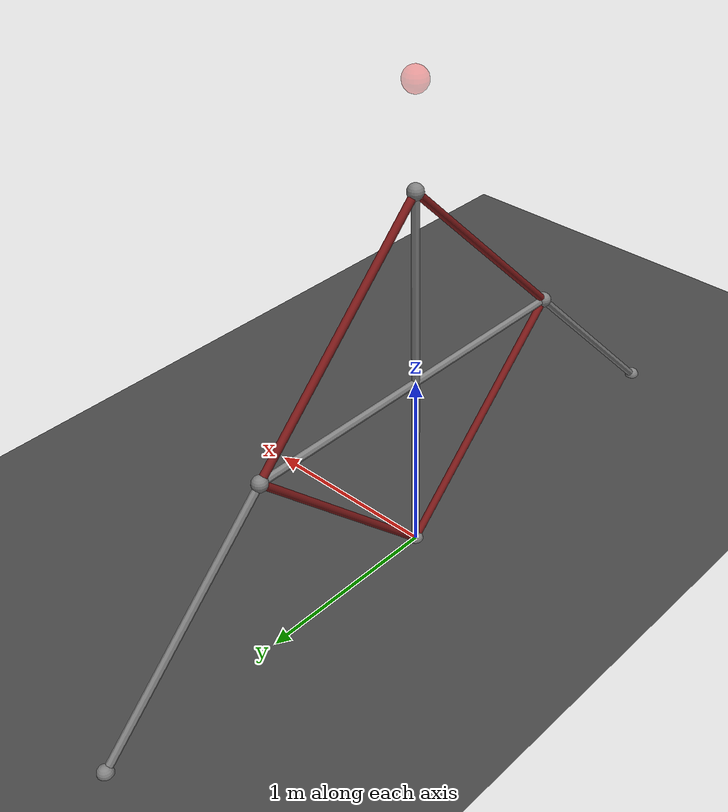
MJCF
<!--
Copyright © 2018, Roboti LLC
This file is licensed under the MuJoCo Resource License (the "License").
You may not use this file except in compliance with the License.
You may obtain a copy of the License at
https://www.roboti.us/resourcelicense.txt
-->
<mujoco model="dbar">

    <option timestep="0.02" iterations="50" solver="Newton" tolerance="1e-10" gravity = "0 0 0" collision="predefined" viscosity=".5"/>

    <size njmax="100" nconmax="20" nstack="400"/>

    <visual>
        <rgba haze=".3 .3 .3 1"/>
    </visual>

    <default>
        <joint type="hinge" pos="0 0 0" axis="1 0 0" limited="false" range="-180 180" damping="0"/>
        <position ctrllimited="false" ctrlrange="-1 1"/>
		<tendon damping="2"/>
		<geom size="0.02"/>
		<site size="0.04"/>
    </default>

    <asset>
        <texture type="skybox" builtin="gradient" rgb1="0.6 0.6 0.6" rgb2="0 0 0" width="512" height="512"/>
        <texture name="texplane" type="2d" builtin="checker" rgb1=".25 .25 .25" rgb2=".3 .3 .3" width="512" height="512" mark="cross" markrgb=".8 .8 .8"/>
        <material name="matplane" reflectance="0.3" texture="texplane" texrepeat="1 1" texuniform="true"/>
    </asset>

    <worldbody>
        <geom name="floor" pos="0 0 0" size="0 0 1" type="plane" material="matplane"/>
        <light directional="true" diffuse=".8 .8 .8" specular=".2 .2 .2" pos="0 0 5" dir="0 0 -1"/>

        <site name="s0" pos="0 0 0"/>
		<site name="s4" pos="0 2 0"/>
		<site name="s5" pos="0 -2 0"/>
        <site name="target" pos="0 0 2.5" size="0.06" rgba="1 0 0 .3"/>

        <body pos="0 0 0">
            <geom name="bar1" type="capsule" fromto="0 0 0  0 -1 1" rgba=".5 .1 .1 1"/>
            <site name="b1s" pos="0 0 0"/>
			<site name="b1e" pos="0 -1 1"/>
			<joint name="bottom"/>
            <body pos="0 -1 1">
                <geom name="bar2" type="capsule" fromto="0 0 0  0 1 1" rgba=".5 .1 .1 1"/>
                <joint name="left"/>
                <site name="b2e" pos="0 1 1"/>
				<body name="bar3" pos="0 1 1">
					<geom name="bar3" type="capsule" fromto="0 0 0  0 1 -1" rgba=".5 .1 .1 1"/>
					<joint name="top"/>
					<site name="b3e" pos="0 1 -1"/>
				</body>
            </body>
			<body name="bar4" pos="0 0 0">
                <geom name="bar4" type="capsule" fromto="0 0 0  0 1 1" rgba=".5 .1 .1 1"/>
				<joint name="right"/>
            </body>
        </body>
    </worldbody>

	<equality>
		<connect active="true" name='1bar34' body1='bar3' body2='bar4' anchor='-0.05 1 -1'/>
		<connect active="true" name='2bar34' body1='bar3' body2='bar4' anchor='0.05 1 -1'/>
	</equality>

    <tendon>
        <spatial name="S1" width="0.02">
            <site site="b1s"/>
            <site site="b2e"/>
        </spatial>
		<spatial name="S2" width="0.02">
            <site site="b1e"/>
            <site site="b3e"/>
        </spatial>
		<spatial name="S3" width="0.02">
            <site site="b3e"/>
            <site site="s4"/>
        </spatial>
		<spatial name="S4" width="0.02">
            <site site="b1e"/>
            <site site="s5"/>
        </spatial>
    </tendon>

    <actuator>
        <position tendon="S1" kp="1"/>
        <position tendon="S2" kp="1"/>
		<position tendon="S3" kp="1"/>
        <position tendon="S4" kp="1"/>
    </actuator>
</mujoco>
